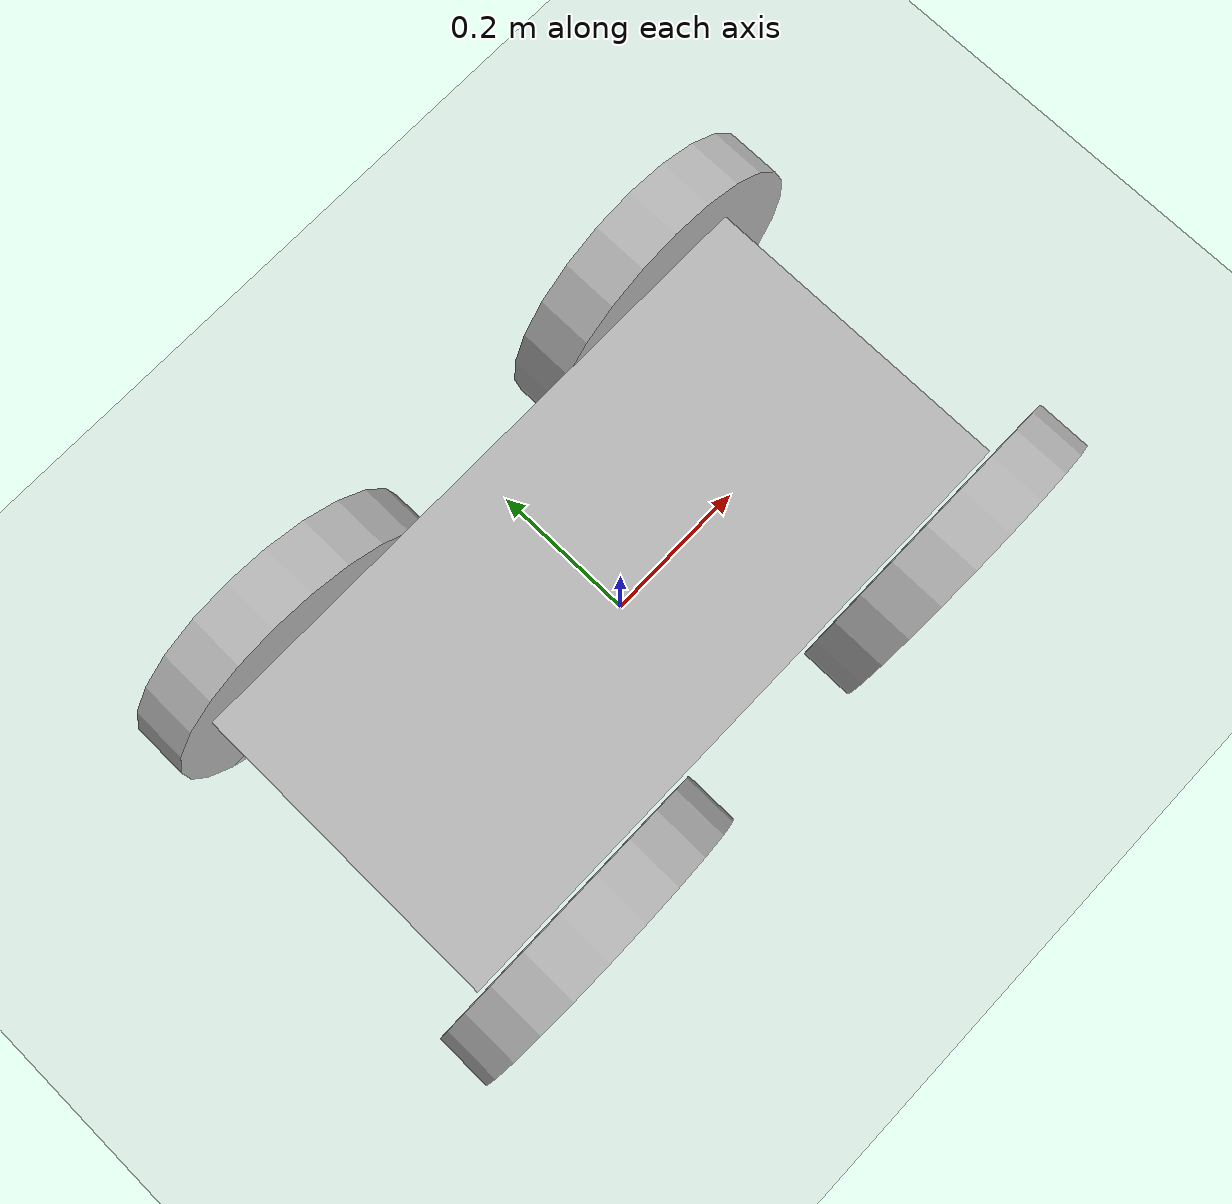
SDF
<?xml version="1.0" ?>
<sdf version="1.5">
    <world name="default">
        <include>
            <uri>model://sun</uri>
        </include>

        <include>
            <uri>model://ground_plane</uri>
        </include>

        <include>
            <uri>model://rover</uri>
        </include>
    </world>
</sdf>

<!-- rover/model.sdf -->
<sdf version='1.4'>
    <model name="rover">
        <static>false</static>

        <link name='chassis'>
            <pose>-0.02 0 0.15 0 0 0</pose>
            <inertial>
                <mass>50</mass>
            </inertial>
            <collision name='chassis_collision'>
                <geometry>
                    <box>
                        <size>.8 .4 .16</size>
                    </box>
                </geometry>
            </collision>
            <visual name='chassis_visual'>
                <geometry>
                    <box>
                        <size>.8 .4 .16</size>
                    </box>
                </geometry>
            </visual>
        </link>

        <link name="rear_left_wheel">
            <pose>-0.3 0.24 0.1 0 1.5707 1.5707</pose>
            <inertial>
                <mass>1.5</mass>
            </inertial>
            <collision name="rear_left_wheel_collision">
                <geometry>
                    <cylinder>
                        <radius>.2</radius>
                        <length>.07</length>
                    </cylinder>
                </geometry>
            </collision>
            <visual name="rear_left_wheel_visual">
                <geometry>
                    <cylinder>
                        <radius>.2</radius>
                        <length>.07</length>
                    </cylinder>
                </geometry>
            </visual>
        </link>

        <joint type="revolute" name="rear_left_joint">
            <pose>-0.3 0.2 0.1 0 0 0</pose>
            <child>rear_left_wheel</child>
            <parent>chassis</parent>
            <axis>
                <xyz>0 1 0</xyz>
            </axis>
        </joint>

        <link name="rear_right_wheel">
            <pose>-0.3 -0.24 0.1 0 1.5707 1.5707</pose>
            <inertial>
                <mass>1.5</mass>
            </inertial>
            <collision name="rear_right_wheel_collision">
                <geometry>
                    <cylinder>
                        <radius>.2</radius>
                        <length>.07</length>
                    </cylinder>
                </geometry>
            </collision>
            <visual name="rear_right_wheel_visual">
                <geometry>
                    <cylinder>
                        <radius>.2</radius>
                        <length>.07</length>
                    </cylinder>
                </geometry>
            </visual>
        </link>

        <joint type="revolute" name="rear_right_joint">
            <pose>-0.3 -0.2 0.1 0 0 0</pose>
            <child>rear_right_wheel</child>
            <parent>chassis</parent>
            <axis>
                <xyz>0 1 0</xyz>
            </axis>
        </joint>

        <link name="front_left_wheel">
            <pose>0.3 0.24 0.1 0 1.5707 1.5707</pose>
            <inertial>
                <mass>1.5</mass>
            </inertial>
            <collision name="front_left_wheel_collision">
                <geometry>
                    <cylinder>
                        <radius>.2</radius>
                        <length>.07</length>
                    </cylinder>
                </geometry>
            </collision>
            <visual name="front_left_wheel_visual">
                <geometry>
                    <cylinder>
                        <radius>.2</radius>
                        <length>.07</length>
                    </cylinder>
                </geometry>
            </visual>
        </link>

        <joint type="revolute" name="front_left_joint">
            <pose>0.3 0.2 0.1 0 0 0</pose>
            <child>front_left_wheel</child>
            <parent>chassis</parent>
            <axis>
                <xyz>0 1 1</xyz>
            </axis>
        </joint>

        <link name="front_right_wheel">
            <pose>0.3 -0.24 0.1 0 1.5707 1.5707</pose>
            <inertial>
                <mass>1.5</mass>
            </inertial>
            <collision name="front_right_wheel_collision">
                <geometry>
                    <cylinder>
                        <radius>.2</radius>
                        <length>.07</length>
                    </cylinder>
                </geometry>
            </collision>
            <visual name="front_right_wheel_visual">
                <geometry>
                    <cylinder>
                        <radius>.2</radius>
                        <length>.07</length>
                    </cylinder>
                </geometry>
            </visual>
        </link>

        <joint type="revolute" name="front_right_joint">
            <pose>0.3 -0.2 0.1 0 0 0</pose>
            <child>front_right_wheel</child>
            <parent>chassis</parent>
            <axis>
                <xyz>0 1 1</xyz>
            </axis>
        </joint>

    </model>
</sdf>
